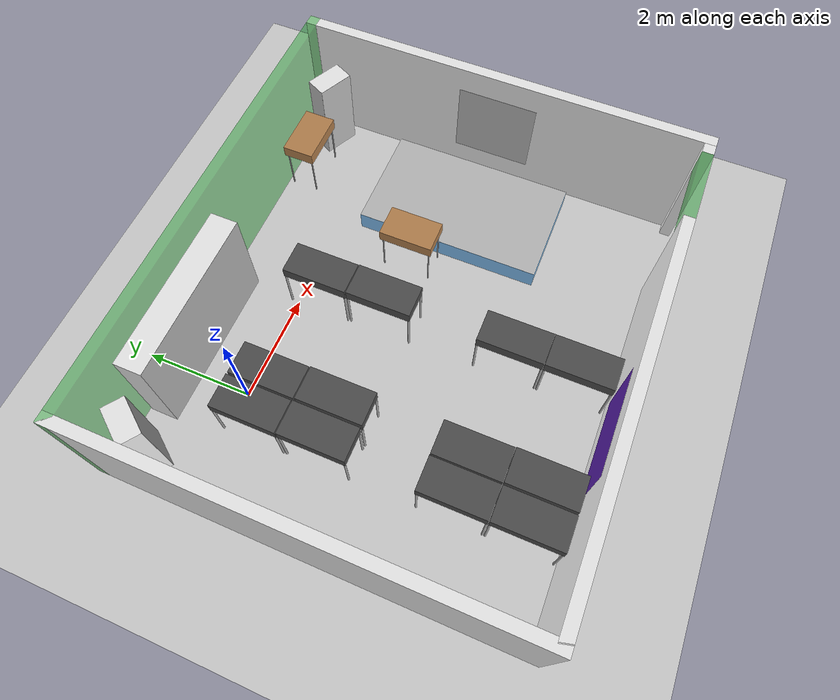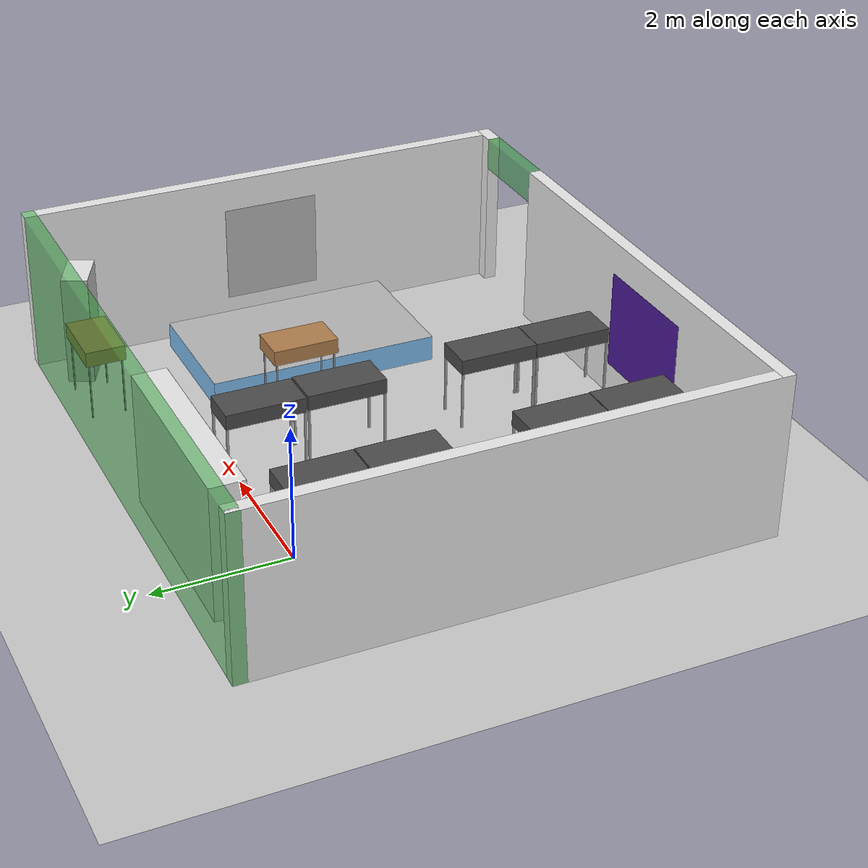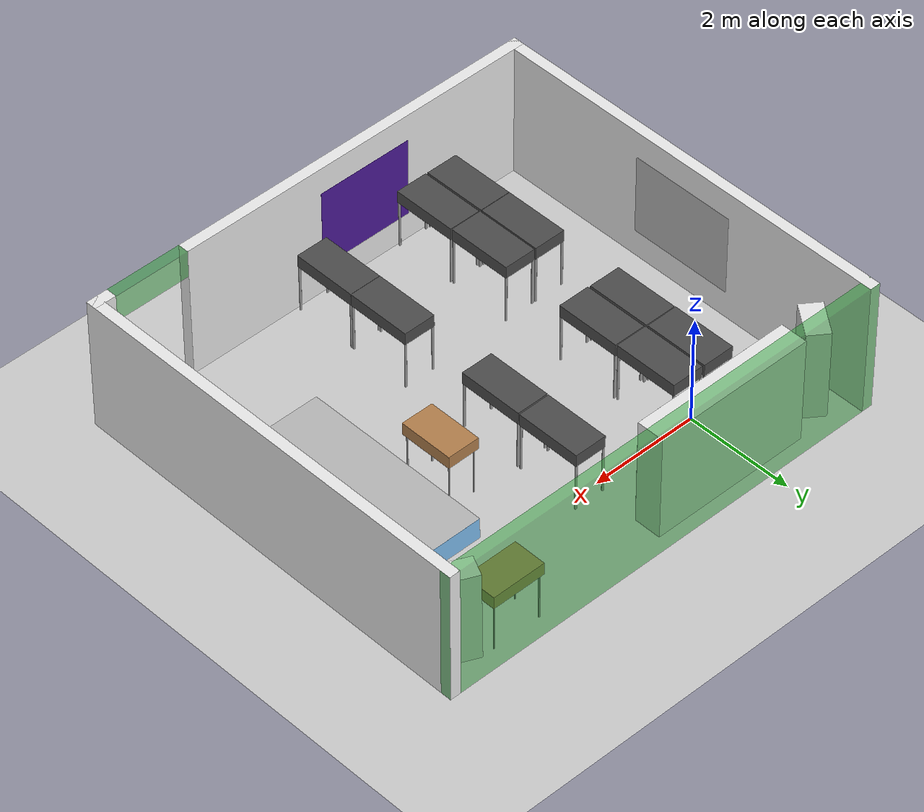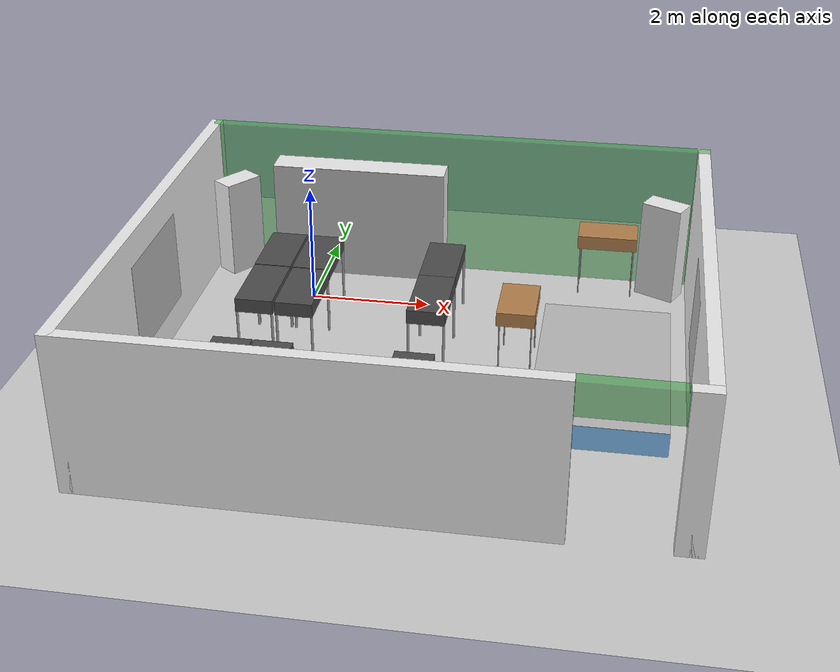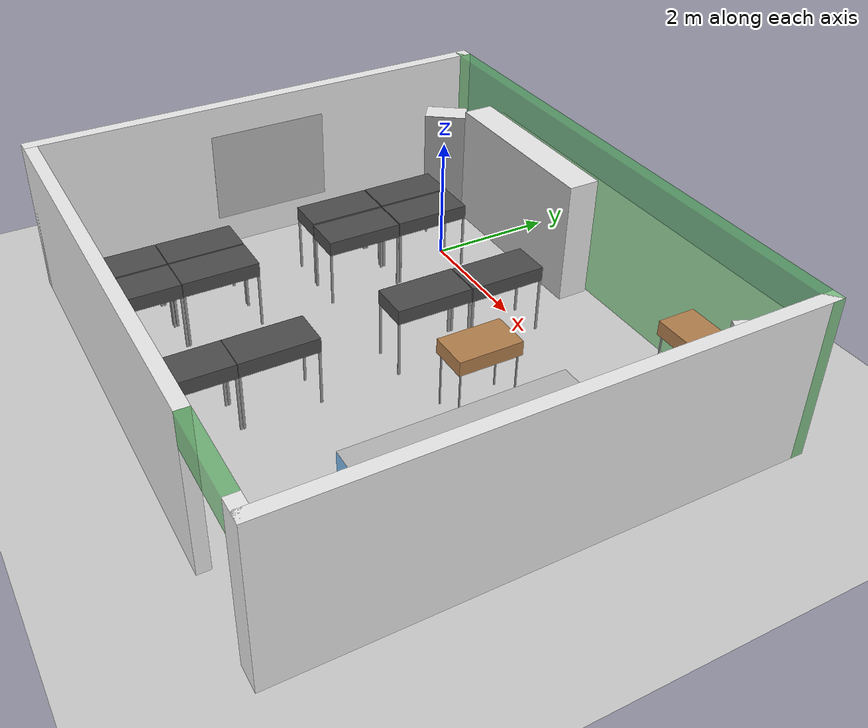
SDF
<sdf version="1.4">
 <world name="default">
  <light name="sun" type="directional">
   <pose>0 -15 10 0 -0 0</pose>
   <diffuse>0.8 0.8 0.8 1</diffuse>
   <specular>0.2 0.2 0.2 1</specular>
   <attenuation>
    <range>1000</range>
    <constant>0.9</constant>
    <linear>0.01</linear>
    <quadratic>0.001</quadratic>
   </attenuation>
   <direction>-0.5 0.1 -0.9</direction>
  </light>
  <model name="ground_plane">
   <static>1</static>
   <link name="link">
    <collision name="collision">
     <geometry><plane><normal>0 0 1</normal><size>100 100</size></plane></geometry>
     <surface><friction><ode><mu>100</mu><mu2>50</mu2></ode></friction></surface>
    </collision>
    <visual name="visual">
     <cast_shadows>0</cast_shadows>
     <geometry><plane><normal>0 0 1</normal><size>100 100</size></plane></geometry>
     <material>
      <script><uri>file://media/materials/scripts/gazebo.material</uri><name>Gazebo/Grey</name></script>
     </material>
    </visual>
    <velocity_decay><linear>0</linear><angular>0</angular></velocity_decay>
   </link>
  </model>
  <physics type="ode">
   <max_step_size>0.001</max_step_size>
   <real_time_factor>1</real_time_factor>
   <real_time_update_rate>1000</real_time_update_rate>
   <gravity>0 0 -9.8</gravity>
  </physics>
  <scene><ambient>0.4 0.4 0.4 1</ambient><background>0.7 0.7 0.7 1</background><shadows>1</shadows></scene>
  <spherical_coordinates>
   <surface_model>EARTH_WGS84</surface_model>
   <latitude_deg>0</latitude_deg>
   <longitude_deg>0</longitude_deg>
   <elevation>0</elevation>
   <heading_deg>0</heading_deg>
  </spherical_coordinates>
  <model name="room307">
   <link name="Wall_0">
    <pose>-4.265 0 0 0 -0 0</pose>
    <visual name="Wall_0_Visual_logo">
     <pose>-1.0 0.101 1.25 0 0 0</pose>
     <geometry><box><size>1.8 0.001 1.5</size></box></geometry>
     <material>
      <script><uri>file://media/materials/scripts/gazebo.material</uri><name>Gazebo/RosIndigoWall</name></script>
     </material>
    </visual>
    <visual name="Wall_0_Visual_0">
     <pose>-0.9 0 1.25 0 -0 0</pose>
     <geometry><box><size>6.93 0.2 2.5</size></box></geometry>
     <material>
      <script><uri>file://media/materials/scripts/gazebo.material</uri><name>Gazebo/White</name></script>
     </material>
    </visual>
    <collision name="Wall_0_Collision_0">
     <geometry><box><size>6.93 0.2 2.5</size></box></geometry>
     <pose>-0.9 0 1.25 0 -0 0</pose>
    </collision>
    <visual name="Wall_0_Visual_1">
     <pose>4.165 0 1.25 0 -0 0</pose>
     <geometry><box><size>0.4 0.2 2.5</size></box></geometry>
     <material>
      <script><uri>file://media/materials/scripts/gazebo.material</uri><name>Gazebo/White</name></script>
     </material>
    </visual>
    <collision name="Wall_0_Collision_1">
     <geometry><box><size>0.4 0.2 2.5</size></box></geometry>
     <pose>4.165 0 1.25 0 -0 0</pose>
    </collision>
    <visual name="Wall_0_Visual_2">
     <pose>3.265 0 2.25 0 -0 0</pose>
     <geometry><box><size>1.4 0.2 0.5</size></box></geometry>
     <material>
      <script><uri>file://media/materials/scripts/gazebo.material</uri><name>Gazebo/GreenTransparent</name></script>
     </material>
    </visual>
    <collision name="Wall_0_Collision_2">
     <geometry><box><size>1.4 0.2 0.5</size></box></geometry>
     <pose>3.265 0 2.25 0 -0 0</pose>
    </collision>
    <velocity_decay><linear>0</linear><angular>0</angular></velocity_decay>
   </link>
   <link name="Wall_1">
    <visual name="Wall_1_Visual_logo">
     <pose>0 0.101 1.25 0 0 0</pose>
     <geometry><box><size>1.5 0.001 1.5</size></box></geometry>
     <material>
      <script><uri>file://media/materials/scripts/gazebo.material</uri><name>Gazebo/FZU_Logo_Wall</name></script>
     </material>
    </visual>
    <collision name="Wall_1_Collision">
     <geometry><box><size>7.77 0.2 2.5</size></box></geometry>
     <pose>0 0 1.25 0 -0 0</pose>
    </collision>
    <visual name="Wall_1_Visual">
     <pose>0 0 1.25 0 -0 0</pose>
     <geometry><box><size>7.77 0.2 2.5</size></box></geometry>
     <material>
      <script><uri>file://media/materials/scripts/gazebo.material</uri><name>Gazebo/White</name></script>
     </material>
    </visual>
    <velocity_decay><linear>0</linear><angular>0</angular></velocity_decay>
    <pose>0 3.785 0 0 -0 1.5708</pose>
   </link>
   <link name="Wall_2">
    <collision name="Wall_2_Collision">
     <geometry><box><size>8.73013 0.2 2.5</size></box></geometry>
     <pose>0 0 1.25 0 -0 0</pose>
    </collision>
    <visual name="Wall_2_Visual">
     <pose>0 0 1.25 0 -0 0</pose>
     <geometry><box><size>8.73013 0.2 2.5</size></box></geometry>
     <material>
      <script><uri>file://media/materials/scripts/gazebo.material</uri><name>Gazebo/GreenTransparent</name></script>
     </material>
    </visual>
    <velocity_decay><linear>0</linear><angular>0</angular></velocity_decay>
    <pose>-4.265 7.57 0 0 -0 3.14159</pose>
   </link>
   <link name="Wall_3">
    <visual name="Wall_3_Visual_logo">
     <pose>0 0.101 1.25 0 0 0</pose>
     <geometry><box><size>1.966254 0.001 1.5</size></box></geometry>
     <material>
      <script><uri>file://media/materials/scripts/gazebo.material</uri><name>Gazebo/RosKineticWall</name></script>
     </material>
    </visual>
    <collision name="Wall_3_Collision">
     <geometry><box><size>7.77 0.2 2.5</size></box></geometry>
     <pose>0 0 1.25 0 -0 0</pose>
    </collision>
    <visual name="Wall_3_Visual">
     <pose>0 0 1.25 0 -0 0</pose>
     <geometry><box><size>7.77 0.2 2.5</size></box></geometry>
     <material>
      <script><uri>file://media/materials/scripts/gazebo.material</uri><name>Gazebo/White</name></script>
     </material>
    </visual>
    <velocity_decay><linear>0</linear><angular>0</angular></velocity_decay>
    <pose>-8.53 3.785 0 0 0 -1.5708</pose>
   </link>
   <static>1</static>
   <pose>6.46177 -6.00059 0 0 -0 0</pose>
  </model>
  <model name="307table_3">
   <static>1</static>
   <link name="table">
    <collision name="surface">
     <pose>0 0 1 0 -0 0</pose>
     <geometry><box><size>1.2 0.6 0.23</size></box></geometry>
     <surface><friction><ode><mu>0.6</mu><mu2>0.6</mu2></ode></friction></surface>
    </collision>
    <visual name="surface">
     <pose>0 0 1 0 -0 0</pose>
     <geometry><box><size>1.2 0.6 0.23</size></box></geometry>
     <material>
      <script><uri>file://media/materials/scripts/gazebo.material</uri><name>Gazebo/DarkGrey</name></script>
     </material>
    </visual>
    <collision name="front_left_leg">
     <pose>0.58 0.28 0.5 0 -0 0</pose>
     <geometry><cylinder><radius>0.02</radius><length>1</length></cylinder></geometry>
    </collision>
    <visual name="front_left_leg">
     <pose>0.58 0.28 0.5 0 -0 0</pose>
     <geometry><cylinder><radius>0.02</radius><length>1</length></cylinder></geometry>
     <material>
      <script><uri>file://media/materials/scripts/gazebo.material</uri><name>Gazebo/Grey</name></script>
     </material>
    </visual>
    <collision name="front_right_leg">
     <pose>0.58 -0.28 0.5 0 -0 0</pose>
     <geometry><cylinder><radius>0.02</radius><length>1</length></cylinder></geometry>
    </collision>
    <visual name="front_right_leg">
     <pose>0.58 -0.28 0.5 0 -0 0</pose>
     <geometry><cylinder><radius>0.02</radius><length>1</length></cylinder></geometry>
     <material>
      <script><uri>file://media/materials/scripts/gazebo.material</uri><name>Gazebo/Grey</name></script>
     </material>
    </visual>
    <collision name="back_right_leg">
     <pose>-0.58 -0.28 0.5 0 -0 0</pose>
     <geometry><cylinder><radius>0.02</radius><length>1</length></cylinder></geometry>
    </collision>
    <visual name="back_right_leg">
     <pose>-0.58 -0.28 0.5 0 -0 0</pose>
     <geometry><cylinder><radius>0.02</radius><length>1</length></cylinder></geometry>
     <material>
      <script><uri>file://media/materials/scripts/gazebo.material</uri><name>Gazebo/Grey</name></script>
     </material>
    </visual>
    <collision name="back_left_leg">
     <pose>-0.58 0.28 0.5 0 -0 0</pose>
     <geometry><cylinder><radius>0.02</radius><length>1</length></cylinder></geometry>
    </collision>
    <visual name="back_left_leg">
     <pose>-0.58 0.28 0.5 0 -0 0</pose>
     <geometry><cylinder><radius>0.02</radius><length>1</length></cylinder></geometry>
     <material>
      <script><uri>file://media/materials/scripts/gazebo.material</uri><name>Gazebo/Grey</name></script>
     </material>
    </visual>
    <velocity_decay><linear>0</linear><angular>0</angular></velocity_decay>
   </link>
   <pose>-0.390161 -5.27658 0 0 0 -1.5708</pose>
  </model>
  <model name="307table_4">
   <static>1</static>
   <link name="table">
    <collision name="surface">
     <pose>0 0 1 0 -0 0</pose>
     <geometry><box><size>1.2 0.6 0.23</size></box></geometry>
     <surface><friction><ode><mu>0.6</mu><mu2>0.6</mu2></ode></friction></surface>
    </collision>
    <visual name="surface">
     <pose>0 0 1 0 -0 0</pose>
     <geometry><box><size>1.2 0.6 0.23</size></box></geometry>
     <material>
      <script><uri>file://media/materials/scripts/gazebo.material</uri><name>Gazebo/DarkGrey</name></script>
     </material>
    </visual>
    <collision name="front_left_leg">
     <pose>0.58 0.28 0.5 0 -0 0</pose>
     <geometry><cylinder><radius>0.02</radius><length>1</length></cylinder></geometry>
    </collision>
    <visual name="front_left_leg">
     <pose>0.58 0.28 0.5 0 -0 0</pose>
     <geometry><cylinder><radius>0.02</radius><length>1</length></cylinder></geometry>
     <material>
      <script><uri>file://media/materials/scripts/gazebo.material</uri><name>Gazebo/Grey</name></script>
     </material>
    </visual>
    <collision name="front_right_leg">
     <pose>0.58 -0.28 0.5 0 -0 0</pose>
     <geometry><cylinder><radius>0.02</radius><length>1</length></cylinder></geometry>
    </collision>
    <visual name="front_right_leg">
     <pose>0.58 -0.28 0.5 0 -0 0</pose>
     <geometry><cylinder><radius>0.02</radius><length>1</length></cylinder></geometry>
     <material>
      <script><uri>file://media/materials/scripts/gazebo.material</uri><name>Gazebo/Grey</name></script>
     </material>
    </visual>
    <collision name="back_right_leg">
     <pose>-0.58 -0.28 0.5 0 -0 0</pose>
     <geometry><cylinder><radius>0.02</radius><length>1</length></cylinder></geometry>
    </collision>
    <visual name="back_right_leg">
     <pose>-0.58 -0.28 0.5 0 -0 0</pose>
     <geometry><cylinder><radius>0.02</radius><length>1</length></cylinder></geometry>
     <material>
      <script><uri>file://media/materials/scripts/gazebo.material</uri><name>Gazebo/Grey</name></script>
     </material>
    </visual>
    <collision name="back_left_leg">
     <pose>-0.58 0.28 0.5 0 -0 0</pose>
     <geometry><cylinder><radius>0.02</radius><length>1</length></cylinder></geometry>
    </collision>
    <visual name="back_left_leg">
     <pose>-0.58 0.28 0.5 0 -0 0</pose>
     <geometry><cylinder><radius>0.02</radius><length>1</length></cylinder></geometry>
     <material>
      <script><uri>file://media/materials/scripts/gazebo.material</uri><name>Gazebo/Grey</name></script>
     </material>
    </visual>
    <velocity_decay><linear>0</linear><angular>0</angular></velocity_decay>
   </link>
   <pose>0.247205 -5.27928 0.003425 0 0 -1.5708</pose>
  </model>
  <model name="307table_5">
   <static>1</static>
   <link name="table">
    <collision name="surface">
     <pose>0 0 1 0 -0 0</pose>
     <geometry><box><size>1.2 0.6 0.23</size></box></geometry>
     <surface><friction><ode><mu>0.6</mu><mu2>0.6</mu2></ode></friction></surface>
    </collision>
    <visual name="surface">
     <pose>0 0 1 0 -0 0</pose>
     <geometry><box><size>1.2 0.6 0.23</size></box></geometry>
     <material>
      <script><uri>file://media/materials/scripts/gazebo.material</uri><name>Gazebo/DarkGrey</name></script>
     </material>
    </visual>
    <collision name="front_left_leg">
     <pose>0.58 0.28 0.5 0 -0 0</pose>
     <geometry><cylinder><radius>0.02</radius><length>1</length></cylinder></geometry>
    </collision>
    <visual name="front_left_leg">
     <pose>0.58 0.28 0.5 0 -0 0</pose>
     <geometry><cylinder><radius>0.02</radius><length>1</length></cylinder></geometry>
     <material>
      <script><uri>file://media/materials/scripts/gazebo.material</uri><name>Gazebo/Grey</name></script>
     </material>
    </visual>
    <collision name="front_right_leg">
     <pose>0.58 -0.28 0.5 0 -0 0</pose>
     <geometry><cylinder><radius>0.02</radius><length>1</length></cylinder></geometry>
    </collision>
    <visual name="front_right_leg">
     <pose>0.58 -0.28 0.5 0 -0 0</pose>
     <geometry><cylinder><radius>0.02</radius><length>1</length></cylinder></geometry>
     <material>
      <script><uri>file://media/materials/scripts/gazebo.material</uri><name>Gazebo/Grey</name></script>
     </material>
    </visual>
    <collision name="back_right_leg">
     <pose>-0.58 -0.28 0.5 0 -0 0</pose>
     <geometry><cylinder><radius>0.02</radius><length>1</length></cylinder></geometry>
    </collision>
    <visual name="back_right_leg">
     <pose>-0.58 -0.28 0.5 0 -0 0</pose>
     <geometry><cylinder><radius>0.02</radius><length>1</length></cylinder></geometry>
     <material>
      <script><uri>file://media/materials/scripts/gazebo.material</uri><name>Gazebo/Grey</name></script>
     </material>
    </visual>
    <collision name="back_left_leg">
     <pose>-0.58 0.28 0.5 0 -0 0</pose>
     <geometry><cylinder><radius>0.02</radius><length>1</length></cylinder></geometry>
    </collision>
    <visual name="back_left_leg">
     <pose>-0.58 0.28 0.5 0 -0 0</pose>
     <geometry><cylinder><radius>0.02</radius><length>1</length></cylinder></geometry>
     <material>
      <script><uri>file://media/materials/scripts/gazebo.material</uri><name>Gazebo/Grey</name></script>
     </material>
    </visual>
    <velocity_decay><linear>0</linear><angular>0</angular></velocity_decay>
   </link>
   <pose>0.235497 -4.06911 0 0 0 -1.5708</pose>
  </model>
  <model name="307table_6">
   <static>1</static>
   <link name="table">
    <collision name="surface">
     <pose>0 0 1 0 -0 0</pose>
     <geometry><box><size>1.2 0.6 0.23</size></box></geometry>
     <surface><friction><ode><mu>0.6</mu><mu2>0.6</mu2></ode></friction></surface>
    </collision>
    <visual name="surface">
     <pose>0 0 1 0 -0 0</pose>
     <geometry><box><size>1.2 0.6 0.23</size></box></geometry>
     <material>
      <script><uri>file://media/materials/scripts/gazebo.material</uri><name>Gazebo/DarkGrey</name></script>
     </material>
    </visual>
    <collision name="front_left_leg">
     <pose>0.58 0.28 0.5 0 -0 0</pose>
     <geometry><cylinder><radius>0.02</radius><length>1</length></cylinder></geometry>
    </collision>
    <visual name="front_left_leg">
     <pose>0.58 0.28 0.5 0 -0 0</pose>
     <geometry><cylinder><radius>0.02</radius><length>1</length></cylinder></geometry>
     <material>
      <script><uri>file://media/materials/scripts/gazebo.material</uri><name>Gazebo/Grey</name></script>
     </material>
    </visual>
    <collision name="front_right_leg">
     <pose>0.58 -0.28 0.5 0 -0 0</pose>
     <geometry><cylinder><radius>0.02</radius><length>1</length></cylinder></geometry>
    </collision>
    <visual name="front_right_leg">
     <pose>0.58 -0.28 0.5 0 -0 0</pose>
     <geometry><cylinder><radius>0.02</radius><length>1</length></cylinder></geometry>
     <material>
      <script><uri>file://media/materials/scripts/gazebo.material</uri><name>Gazebo/Grey</name></script>
     </material>
    </visual>
    <collision name="back_right_leg">
     <pose>-0.58 -0.28 0.5 0 -0 0</pose>
     <geometry><cylinder><radius>0.02</radius><length>1</length></cylinder></geometry>
    </collision>
    <visual name="back_right_leg">
     <pose>-0.58 -0.28 0.5 0 -0 0</pose>
     <geometry><cylinder><radius>0.02</radius><length>1</length></cylinder></geometry>
     <material>
      <script><uri>file://media/materials/scripts/gazebo.material</uri><name>Gazebo/Grey</name></script>
     </material>
    </visual>
    <collision name="back_left_leg">
     <pose>-0.58 0.28 0.5 0 -0 0</pose>
     <geometry><cylinder><radius>0.02</radius><length>1</length></cylinder></geometry>
    </collision>
    <visual name="back_left_leg">
     <pose>-0.58 0.28 0.5 0 -0 0</pose>
     <geometry><cylinder><radius>0.02</radius><length>1</length></cylinder></geometry>
     <material>
      <script><uri>file://media/materials/scripts/gazebo.material</uri><name>Gazebo/Grey</name></script>
     </material>
    </visual>
    <velocity_decay><linear>0</linear><angular>0</angular></velocity_decay>
   </link>
   <pose>-0.391298 -4.06642 -0 0 0 -1.5708</pose>
  </model>
  <model name="307table_7">
   <static>1</static>
   <link name="table">
    <collision name="surface">
     <pose>0 0 1 0 -0 0</pose>
     <geometry><box><size>1.2 0.6 0.23</size></box></geometry>
     <surface><friction><ode><mu>0.6</mu><mu2>0.6</mu2></ode></friction></surface>
    </collision>
    <visual name="surface">
     <pose>0 0 1 0 -0 0</pose>
     <geometry><box><size>1.2 0.6 0.23</size></box></geometry>
     <material>
      <script><uri>file://media/materials/scripts/gazebo.material</uri><name>Gazebo/DarkGrey</name></script>
     </material>
    </visual>
    <collision name="front_left_leg">
     <pose>0.58 0.28 0.5 0 -0 0</pose>
     <geometry><cylinder><radius>0.02</radius><length>1</length></cylinder></geometry>
    </collision>
    <visual name="front_left_leg">
     <pose>0.58 0.28 0.5 0 -0 0</pose>
     <geometry><cylinder><radius>0.02</radius><length>1</length></cylinder></geometry>
     <material>
      <script><uri>file://media/materials/scripts/gazebo.material</uri><name>Gazebo/Grey</name></script>
     </material>
    </visual>
    <collision name="front_right_leg">
     <pose>0.58 -0.28 0.5 0 -0 0</pose>
     <geometry><cylinder><radius>0.02</radius><length>1</length></cylinder></geometry>
    </collision>
    <visual name="front_right_leg">
     <pose>0.58 -0.28 0.5 0 -0 0</pose>
     <geometry><cylinder><radius>0.02</radius><length>1</length></cylinder></geometry>
     <material>
      <script><uri>file://media/materials/scripts/gazebo.material</uri><name>Gazebo/Grey</name></script>
     </material>
    </visual>
    <collision name="back_right_leg">
     <pose>-0.58 -0.28 0.5 0 -0 0</pose>
     <geometry><cylinder><radius>0.02</radius><length>1</length></cylinder></geometry>
    </collision>
    <visual name="back_right_leg">
     <pose>-0.58 -0.28 0.5 0 -0 0</pose>
     <geometry><cylinder><radius>0.02</radius><length>1</length></cylinder></geometry>
     <material>
      <script><uri>file://media/materials/scripts/gazebo.material</uri><name>Gazebo/Grey</name></script>
     </material>
    </visual>
    <collision name="back_left_leg">
     <pose>-0.58 0.28 0.5 0 -0 0</pose>
     <geometry><cylinder><radius>0.02</radius><length>1</length></cylinder></geometry>
    </collision>
    <visual name="back_left_leg">
     <pose>-0.58 0.28 0.5 0 -0 0</pose>
     <geometry><cylinder><radius>0.02</radius><length>1</length></cylinder></geometry>
     <material>
      <script><uri>file://media/materials/scripts/gazebo.material</uri><name>Gazebo/Grey</name></script>
     </material>
    </visual>
    <velocity_decay><linear>0</linear><angular>0</angular></velocity_decay>
   </link>
   <pose>2.34819 -5.2601 0 0 0 -1.5708</pose>
  </model>
  <model name="307table_8">
   <static>1</static>
   <link name="table">
    <collision name="surface">
     <pose>0 0 1 0 -0 0</pose>
     <geometry><box><size>1.2 0.6 0.23</size></box></geometry>
     <surface><friction><ode><mu>0.6</mu><mu2>0.6</mu2></ode></friction></surface>
    </collision>
    <visual name="surface">
     <pose>0 0 1 0 -0 0</pose>
     <geometry><box><size>1.2 0.6 0.23</size></box></geometry>
     <material>
      <script><uri>file://media/materials/scripts/gazebo.material</uri><name>Gazebo/DarkGrey</name></script>
     </material>
    </visual>
    <collision name="front_left_leg">
     <pose>0.58 0.28 0.5 0 -0 0</pose>
     <geometry><cylinder><radius>0.02</radius><length>1</length></cylinder></geometry>
    </collision>
    <visual name="front_left_leg">
     <pose>0.58 0.28 0.5 0 -0 0</pose>
     <geometry><cylinder><radius>0.02</radius><length>1</length></cylinder></geometry>
     <material>
      <script><uri>file://media/materials/scripts/gazebo.material</uri><name>Gazebo/Grey</name></script>
     </material>
    </visual>
    <collision name="front_right_leg">
     <pose>0.58 -0.28 0.5 0 -0 0</pose>
     <geometry><cylinder><radius>0.02</radius><length>1</length></cylinder></geometry>
    </collision>
    <visual name="front_right_leg">
     <pose>0.58 -0.28 0.5 0 -0 0</pose>
     <geometry><cylinder><radius>0.02</radius><length>1</length></cylinder></geometry>
     <material>
      <script><uri>file://media/materials/scripts/gazebo.material</uri><name>Gazebo/Grey</name></script>
     </material>
    </visual>
    <collision name="back_right_leg">
     <pose>-0.58 -0.28 0.5 0 -0 0</pose>
     <geometry><cylinder><radius>0.02</radius><length>1</length></cylinder></geometry>
    </collision>
    <visual name="back_right_leg">
     <pose>-0.58 -0.28 0.5 0 -0 0</pose>
     <geometry><cylinder><radius>0.02</radius><length>1</length></cylinder></geometry>
     <material>
      <script><uri>file://media/materials/scripts/gazebo.material</uri><name>Gazebo/Grey</name></script>
     </material>
    </visual>
    <collision name="back_left_leg">
     <pose>-0.58 0.28 0.5 0 -0 0</pose>
     <geometry><cylinder><radius>0.02</radius><length>1</length></cylinder></geometry>
    </collision>
    <visual name="back_left_leg">
     <pose>-0.58 0.28 0.5 0 -0 0</pose>
     <geometry><cylinder><radius>0.02</radius><length>1</length></cylinder></geometry>
     <material>
      <script><uri>file://media/materials/scripts/gazebo.material</uri><name>Gazebo/Grey</name></script>
     </material>
    </visual>
    <velocity_decay><linear>0</linear><angular>0</angular></velocity_decay>
   </link>
   <pose>2.34754 -4.05307 0 0 0 -1.5708</pose>
  </model>
  <model name="307table_9">
   <static>1</static>
   <link name="table">
    <collision name="surface">
     <pose>0 0 1 0 -0 0</pose>
     <geometry><box><size>1.2 0.6 0.23</size></box></geometry>
     <surface><friction><ode><mu>0.6</mu><mu2>0.6</mu2></ode></friction></surface>
    </collision>
    <visual name="surface">
     <pose>0 0 1 0 -0 0</pose>
     <geometry><box><size>1.2 0.6 0.23</size></box></geometry>
     <material>
      <script><uri>file://media/materials/scripts/gazebo.material</uri><name>Gazebo/DarkGrey</name></script>
     </material>
    </visual>
    <collision name="front_left_leg">
     <pose>0.58 0.28 0.5 0 -0 0</pose>
     <geometry><cylinder><radius>0.02</radius><length>1</length></cylinder></geometry>
    </collision>
    <visual name="front_left_leg">
     <pose>0.58 0.28 0.5 0 -0 0</pose>
     <geometry><cylinder><radius>0.02</radius><length>1</length></cylinder></geometry>
     <material>
      <script><uri>file://media/materials/scripts/gazebo.material</uri><name>Gazebo/Grey</name></script>
     </material>
    </visual>
    <collision name="front_right_leg">
     <pose>0.58 -0.28 0.5 0 -0 0</pose>
     <geometry><cylinder><radius>0.02</radius><length>1</length></cylinder></geometry>
    </collision>
    <visual name="front_right_leg">
     <pose>0.58 -0.28 0.5 0 -0 0</pose>
     <geometry><cylinder><radius>0.02</radius><length>1</length></cylinder></geometry>
     <material>
      <script><uri>file://media/materials/scripts/gazebo.material</uri><name>Gazebo/Grey</name></script>
     </material>
    </visual>
    <collision name="back_right_leg">
     <pose>-0.58 -0.28 0.5 0 -0 0</pose>
     <geometry><cylinder><radius>0.02</radius><length>1</length></cylinder></geometry>
    </collision>
    <visual name="back_right_leg">
     <pose>-0.58 -0.28 0.5 0 -0 0</pose>
     <geometry><cylinder><radius>0.02</radius><length>1</length></cylinder></geometry>
     <material>
      <script><uri>file://media/materials/scripts/gazebo.material</uri><name>Gazebo/Grey</name></script>
     </material>
    </visual>
    <collision name="back_left_leg">
     <pose>-0.58 0.28 0.5 0 -0 0</pose>
     <geometry><cylinder><radius>0.02</radius><length>1</length></cylinder></geometry>
    </collision>
    <visual name="back_left_leg">
     <pose>-0.58 0.28 0.5 0 -0 0</pose>
     <geometry><cylinder><radius>0.02</radius><length>1</length></cylinder></geometry>
     <material>
      <script><uri>file://media/materials/scripts/gazebo.material</uri><name>Gazebo/Grey</name></script>
     </material>
    </visual>
    <velocity_decay><linear>0</linear><angular>0</angular></velocity_decay>
   </link>
   <pose>-0.40427 -1.69505 0 0 0 -1.5708</pose>
  </model>
  <model name="307table_10">
   <static>1</static>
   <link name="table">
    <collision name="surface">
     <pose>0 0 1 0 -0 0</pose>
     <geometry><box><size>1.2 0.6 0.23</size></box></geometry>
     <surface><friction><ode><mu>0.6</mu><mu2>0.6</mu2></ode></friction></surface>
    </collision>
    <visual name="surface">
     <pose>0 0 1 0 -0 0</pose>
     <geometry><box><size>1.2 0.6 0.23</size></box></geometry>
     <material>
      <script><uri>file://media/materials/scripts/gazebo.material</uri><name>Gazebo/DarkGrey</name></script>
     </material>
    </visual>
    <collision name="front_left_leg">
     <pose>0.58 0.28 0.5 0 -0 0</pose>
     <geometry><cylinder><radius>0.02</radius><length>1</length></cylinder></geometry>
    </collision>
    <visual name="front_left_leg">
     <pose>0.58 0.28 0.5 0 -0 0</pose>
     <geometry><cylinder><radius>0.02</radius><length>1</length></cylinder></geometry>
     <material>
      <script><uri>file://media/materials/scripts/gazebo.material</uri><name>Gazebo/Grey</name></script>
     </material>
    </visual>
    <collision name="front_right_leg">
     <pose>0.58 -0.28 0.5 0 -0 0</pose>
     <geometry><cylinder><radius>0.02</radius><length>1</length></cylinder></geometry>
    </collision>
    <visual name="front_right_leg">
     <pose>0.58 -0.28 0.5 0 -0 0</pose>
     <geometry><cylinder><radius>0.02</radius><length>1</length></cylinder></geometry>
     <material>
      <script><uri>file://media/materials/scripts/gazebo.material</uri><name>Gazebo/Grey</name></script>
     </material>
    </visual>
    <collision name="back_right_leg">
     <pose>-0.58 -0.28 0.5 0 -0 0</pose>
     <geometry><cylinder><radius>0.02</radius><length>1</length></cylinder></geometry>
    </collision>
    <visual name="back_right_leg">
     <pose>-0.58 -0.28 0.5 0 -0 0</pose>
     <geometry><cylinder><radius>0.02</radius><length>1</length></cylinder></geometry>
     <material>
      <script><uri>file://media/materials/scripts/gazebo.material</uri><name>Gazebo/Grey</name></script>
     </material>
    </visual>
    <collision name="back_left_leg">
     <pose>-0.58 0.28 0.5 0 -0 0</pose>
     <geometry><cylinder><radius>0.02</radius><length>1</length></cylinder></geometry>
    </collision>
    <visual name="back_left_leg">
     <pose>-0.58 0.28 0.5 0 -0 0</pose>
     <geometry><cylinder><radius>0.02</radius><length>1</length></cylinder></geometry>
     <material>
      <script><uri>file://media/materials/scripts/gazebo.material</uri><name>Gazebo/Grey</name></script>
     </material>
    </visual>
    <velocity_decay><linear>0</linear><angular>0</angular></velocity_decay>
   </link>
   <pose>0.236182 -1.70483 0 0 -0 1.5708</pose>
  </model>
  <model name="307table_11">
   <static>1</static>
   <link name="table">
    <collision name="surface">
     <pose>0 0 1 0 -0 0</pose>
     <geometry><box><size>1.2 0.6 0.23</size></box></geometry>
     <surface><friction><ode><mu>0.6</mu><mu2>0.6</mu2></ode></friction></surface>
    </collision>
    <visual name="surface">
     <pose>0 0 1 0 -0 0</pose>
     <geometry><box><size>1.2 0.6 0.23</size></box></geometry>
     <material>
      <script><uri>file://media/materials/scripts/gazebo.material</uri><name>Gazebo/DarkGrey</name></script>
     </material>
    </visual>
    <collision name="front_left_leg">
     <pose>0.58 0.28 0.5 0 -0 0</pose>
     <geometry><cylinder><radius>0.02</radius><length>1</length></cylinder></geometry>
    </collision>
    <visual name="front_left_leg">
     <pose>0.58 0.28 0.5 0 -0 0</pose>
     <geometry><cylinder><radius>0.02</radius><length>1</length></cylinder></geometry>
     <material>
      <script><uri>file://media/materials/scripts/gazebo.material</uri><name>Gazebo/Grey</name></script>
     </material>
    </visual>
    <collision name="front_right_leg">
     <pose>0.58 -0.28 0.5 0 -0 0</pose>
     <geometry><cylinder><radius>0.02</radius><length>1</length></cylinder></geometry>
    </collision>
    <visual name="front_right_leg">
     <pose>0.58 -0.28 0.5 0 -0 0</pose>
     <geometry><cylinder><radius>0.02</radius><length>1</length></cylinder></geometry>
     <material>
      <script><uri>file://media/materials/scripts/gazebo.material</uri><name>Gazebo/Grey</name></script>
     </material>
    </visual>
    <collision name="back_right_leg">
     <pose>-0.58 -0.28 0.5 0 -0 0</pose>
     <geometry><cylinder><radius>0.02</radius><length>1</length></cylinder></geometry>
    </collision>
    <visual name="back_right_leg">
     <pose>-0.58 -0.28 0.5 0 -0 0</pose>
     <geometry><cylinder><radius>0.02</radius><length>1</length></cylinder></geometry>
     <material>
      <script><uri>file://media/materials/scripts/gazebo.material</uri><name>Gazebo/Grey</name></script>
     </material>
    </visual>
    <collision name="back_left_leg">
     <pose>-0.58 0.28 0.5 0 -0 0</pose>
     <geometry><cylinder><radius>0.02</radius><length>1</length></cylinder></geometry>
    </collision>
    <visual name="back_left_leg">
     <pose>-0.58 0.28 0.5 0 -0 0</pose>
     <geometry><cylinder><radius>0.02</radius><length>1</length></cylinder></geometry>
     <material>
      <script><uri>file://media/materials/scripts/gazebo.material</uri><name>Gazebo/Grey</name></script>
     </material>
    </visual>
    <velocity_decay><linear>0</linear><angular>0</angular></velocity_decay>
   </link>
   <pose>-0.410945 -0.476582 0 0 0 -1.5708</pose>
  </model>
  <model name="307table_12">
   <static>1</static>
   <link name="table">
    <collision name="surface">
     <pose>0 0 1 0 -0 0</pose>
     <geometry><box><size>1.2 0.6 0.23</size></box></geometry>
     <surface><friction><ode><mu>0.6</mu><mu2>0.6</mu2></ode></friction></surface>
    </collision>
    <visual name="surface">
     <pose>0 0 1 0 -0 0</pose>
     <geometry><box><size>1.2 0.6 0.23</size></box></geometry>
     <material>
      <script><uri>file://media/materials/scripts/gazebo.material</uri><name>Gazebo/DarkGrey</name></script>
     </material>
    </visual>
    <collision name="front_left_leg">
     <pose>0.58 0.28 0.5 0 -0 0</pose>
     <geometry><cylinder><radius>0.02</radius><length>1</length></cylinder></geometry>
    </collision>
    <visual name="front_left_leg">
     <pose>0.58 0.28 0.5 0 -0 0</pose>
     <geometry><cylinder><radius>0.02</radius><length>1</length></cylinder></geometry>
     <material>
      <script><uri>file://media/materials/scripts/gazebo.material</uri><name>Gazebo/Grey</name></script>
     </material>
    </visual>
    <collision name="front_right_leg">
     <pose>0.58 -0.28 0.5 0 -0 0</pose>
     <geometry><cylinder><radius>0.02</radius><length>1</length></cylinder></geometry>
    </collision>
    <visual name="front_right_leg">
     <pose>0.58 -0.28 0.5 0 -0 0</pose>
     <geometry><cylinder><radius>0.02</radius><length>1</length></cylinder></geometry>
     <material>
      <script><uri>file://media/materials/scripts/gazebo.material</uri><name>Gazebo/Grey</name></script>
     </material>
    </visual>
    <collision name="back_right_leg">
     <pose>-0.58 -0.28 0.5 0 -0 0</pose>
     <geometry><cylinder><radius>0.02</radius><length>1</length></cylinder></geometry>
    </collision>
    <visual name="back_right_leg">
     <pose>-0.58 -0.28 0.5 0 -0 0</pose>
     <geometry><cylinder><radius>0.02</radius><length>1</length></cylinder></geometry>
     <material>
      <script><uri>file://media/materials/scripts/gazebo.material</uri><name>Gazebo/Grey</name></script>
     </material>
    </visual>
    <collision name="back_left_leg">
     <pose>-0.58 0.28 0.5 0 -0 0</pose>
     <geometry><cylinder><radius>0.02</radius><length>1</length></cylinder></geometry>
    </collision>
    <visual name="back_left_leg">
     <pose>-0.58 0.28 0.5 0 -0 0</pose>
     <geometry><cylinder><radius>0.02</radius><length>1</length></cylinder></geometry>
     <material>
      <script><uri>file://media/materials/scripts/gazebo.material</uri><name>Gazebo/Grey</name></script>
     </material>
    </visual>
    <velocity_decay><linear>0</linear><angular>0</angular></velocity_decay>
   </link>
   <pose>0.223485 -0.486695 0 0 0 -1.5708</pose>
  </model>
  <model name="307table_13">
   <static>1</static>
   <link name="table">
    <collision name="surface">
     <pose>0 0 1 0 -0 0</pose>
     <geometry><box><size>1.2 0.6 0.23</size></box></geometry>
     <surface><friction><ode><mu>0.6</mu><mu2>0.6</mu2></ode></friction></surface>
    </collision>
    <visual name="surface">
     <pose>0 0 1 0 -0 0</pose>
     <geometry><box><size>1.2 0.6 0.23</size></box></geometry>
     <material>
      <script><uri>file://media/materials/scripts/gazebo.material</uri><name>Gazebo/DarkGrey</name></script>
     </material>
    </visual>
    <collision name="front_left_leg">
     <pose>0.58 0.28 0.5 0 -0 0</pose>
     <geometry><cylinder><radius>0.02</radius><length>1</length></cylinder></geometry>
    </collision>
    <visual name="front_left_leg">
     <pose>0.58 0.28 0.5 0 -0 0</pose>
     <geometry><cylinder><radius>0.02</radius><length>1</length></cylinder></geometry>
     <material>
      <script><uri>file://media/materials/scripts/gazebo.material</uri><name>Gazebo/Grey</name></script>
     </material>
    </visual>
    <collision name="front_right_leg">
     <pose>0.58 -0.28 0.5 0 -0 0</pose>
     <geometry><cylinder><radius>0.02</radius><length>1</length></cylinder></geometry>
    </collision>
    <visual name="front_right_leg">
     <pose>0.58 -0.28 0.5 0 -0 0</pose>
     <geometry><cylinder><radius>0.02</radius><length>1</length></cylinder></geometry>
     <material>
      <script><uri>file://media/materials/scripts/gazebo.material</uri><name>Gazebo/Grey</name></script>
     </material>
    </visual>
    <collision name="back_right_leg">
     <pose>-0.58 -0.28 0.5 0 -0 0</pose>
     <geometry><cylinder><radius>0.02</radius><length>1</length></cylinder></geometry>
    </collision>
    <visual name="back_right_leg">
     <pose>-0.58 -0.28 0.5 0 -0 0</pose>
     <geometry><cylinder><radius>0.02</radius><length>1</length></cylinder></geometry>
     <material>
      <script><uri>file://media/materials/scripts/gazebo.material</uri><name>Gazebo/Grey</name></script>
     </material>
    </visual>
    <collision name="back_left_leg">
     <pose>-0.58 0.28 0.5 0 -0 0</pose>
     <geometry><cylinder><radius>0.02</radius><length>1</length></cylinder></geometry>
    </collision>
    <visual name="back_left_leg">
     <pose>-0.58 0.28 0.5 0 -0 0</pose>
     <geometry><cylinder><radius>0.02</radius><length>1</length></cylinder></geometry>
     <material>
      <script><uri>file://media/materials/scripts/gazebo.material</uri><name>Gazebo/Grey</name></script>
     </material>
    </visual>
    <velocity_decay><linear>0</linear><angular>0</angular></velocity_decay>
   </link>
   <pose>2.31309 -1.64915 0.011183 0 0 -1.5708</pose>
  </model>
  <model name="307table_14">
   <static>1</static>
   <link name="table">
    <collision name="surface">
     <pose>0 0 1 0 -0 0</pose>
     <geometry><box><size>1.2 0.6 0.23</size></box></geometry>
     <surface><friction><ode><mu>0.6</mu><mu2>0.6</mu2></ode></friction></surface>
    </collision>
    <visual name="surface">
     <pose>0 0 1 0 -0 0</pose>
     <geometry><box><size>1.2 0.6 0.23</size></box></geometry>
     <material>
      <script><uri>file://media/materials/scripts/gazebo.material</uri><name>Gazebo/DarkGrey</name></script>
     </material>
    </visual>
    <collision name="front_left_leg">
     <pose>0.58 0.28 0.5 0 -0 0</pose>
     <geometry><cylinder><radius>0.02</radius><length>1</length></cylinder></geometry>
    </collision>
    <visual name="front_left_leg">
     <pose>0.58 0.28 0.5 0 -0 0</pose>
     <geometry><cylinder><radius>0.02</radius><length>1</length></cylinder></geometry>
     <material>
      <script><uri>file://media/materials/scripts/gazebo.material</uri><name>Gazebo/Grey</name></script>
     </material>
    </visual>
    <collision name="front_right_leg">
     <pose>0.58 -0.28 0.5 0 -0 0</pose>
     <geometry><cylinder><radius>0.02</radius><length>1</length></cylinder></geometry>
    </collision>
    <visual name="front_right_leg">
     <pose>0.58 -0.28 0.5 0 -0 0</pose>
     <geometry><cylinder><radius>0.02</radius><length>1</length></cylinder></geometry>
     <material>
      <script><uri>file://media/materials/scripts/gazebo.material</uri><name>Gazebo/Grey</name></script>
     </material>
    </visual>
    <collision name="back_right_leg">
     <pose>-0.58 -0.28 0.5 0 -0 0</pose>
     <geometry><cylinder><radius>0.02</radius><length>1</length></cylinder></geometry>
    </collision>
    <visual name="back_right_leg">
     <pose>-0.58 -0.28 0.5 0 -0 0</pose>
     <geometry><cylinder><radius>0.02</radius><length>1</length></cylinder></geometry>
     <material>
      <script><uri>file://media/materials/scripts/gazebo.material</uri><name>Gazebo/Grey</name></script>
     </material>
    </visual>
    <collision name="back_left_leg">
     <pose>-0.58 0.28 0.5 0 -0 0</pose>
     <geometry><cylinder><radius>0.02</radius><length>1</length></cylinder></geometry>
    </collision>
    <visual name="back_left_leg">
     <pose>-0.58 0.28 0.5 0 -0 0</pose>
     <geometry><cylinder><radius>0.02</radius><length>1</length></cylinder></geometry>
     <material>
      <script><uri>file://media/materials/scripts/gazebo.material</uri><name>Gazebo/Grey</name></script>
     </material>
    </visual>
    <velocity_decay><linear>0</linear><angular>0</angular></velocity_decay>
   </link>
   <pose>2.30928 -0.428087 0 0 -0 1.5708</pose>
  </model>
  <model name="307air_conditioning">
   <static>1</static>
   <link name="307air_conditioning">
    <visual name="307air_conditioning_texture">
     <pose>0 -0.201 0 0 -0 0</pose>
     <geometry><box><size>0.7 0.001 1.7</size></box></geometry>
     <material>
      <script><uri>file://media/materials/scripts/gazebo.material</uri><name>Gazebo/Air_Con_Texture</name></script>
     </material>
    </visual>
    <collision name="307air_conditioning">
     <pose>0 0 0.001 0 -0 0</pose>
     <geometry><box><size>0.7 0.4 1.7</size></box></geometry>
     <surface><friction><ode><mu>0.6</mu><mu2>0.6</mu2></ode></friction></surface>
    </collision>
    <visual name="307air_conditioning">
     <pose>0 0 0.001 0 -0 0</pose>
     <geometry><box><size>0.7 0.4 1.7</size></box></geometry>
     <material>
      <script><uri>file://media/materials/scripts/gazebo.material</uri><name>Gazebo/White</name></script>
     </material>
    </visual>
    <velocity_decay><linear>0</linear><angular>0</angular></velocity_decay>
   </link>
   <pose>-1.55839 0.969507 0.853292 0 -0 0.942365</pose>
  </model>
  <model name="307air_conditioning_0">
   <static>1</static>
   <link name="307air_conditioning">
    <visual name="307air_conditioning_texture">
     <pose>0 -0.201 0 0 -0 0</pose>
     <geometry><box><size>0.7 0.001 1.7</size></box></geometry>
     <material>
      <script><uri>file://media/materials/scripts/gazebo.material</uri><name>Gazebo/Air_Con_Texture</name></script>
     </material>
    </visual>
    <collision name="307air_conditioning">
     <pose>0 0 0.001 0 -0 0</pose>
     <geometry><box><size>0.7 0.4 1.7</size></box></geometry>
     <surface><friction><ode><mu>0.6</mu><mu2>0.6</mu2></ode></friction></surface>
    </collision>
    <visual name="307air_conditioning">
     <pose>0 0 0.001 0 -0 0</pose>
     <geometry><box><size>0.7 0.4 1.7</size></box></geometry>
     <material>
      <script><uri>file://media/materials/scripts/gazebo.material</uri><name>Gazebo/White</name></script>
     </material>
    </visual>
    <velocity_decay><linear>0</linear><angular>0</angular></velocity_decay>
   </link>
   <pose>5.90258 1.05884 0.863783 0 0.010716 -0.447377</pose>
  </model>
  <model name="307forcer">
   <static>1</static>
   <link name="307forcer">
    <visual name="307forcer_texture">
     <pose>0 -0.251 0 0 -0 0</pose>
     <geometry><box><size>3 0.001 2</size></box></geometry>
     <material>
      <script><uri>file://media/materials/scripts/gazebo.material</uri><name>Gazebo/Forcer_Texture</name></script>
     </material>
    </visual>
    <collision name="307forcer">
     <pose>0 0 0.001 0 -0 0</pose>
     <geometry><box><size>3 0.5 2</size></box></geometry>
     <surface><friction><ode><mu>0.6</mu><mu2>0.6</mu2></ode></friction></surface>
    </collision>
    <visual name="307forcer">
     <pose>0 0 0.001 0 -0 0</pose>
     <geometry><box><size>3 0.5 2</size></box></geometry>
     <material>
      <script><uri>file://media/materials/scripts/gazebo.material</uri><name>Gazebo/White</name></script>
     </material>
    </visual>
    <velocity_decay><linear>0</linear><angular>0</angular></velocity_decay>
   </link>
   <pose>0.619916 1.18093 1.00 0 -0 0</pose>
  </model>
  <model name="307table_17">
   <static>1</static>
   <link name="table">
    <collision name="surface">
     <pose>0 0 1 0 -0 0</pose>
     <geometry><box><size>1 0.6 0.23</size></box></geometry>
     <surface><friction><ode><mu>0.6</mu><mu2>0.6</mu2></ode></friction></surface>
    </collision>
    <visual name="surface">
     <pose>0 0 1 0 -0 0</pose>
     <geometry><box><size>1 0.6 0.23</size></box></geometry>
     <material>
      <script><uri>file://media/materials/scripts/gazebo.material</uri><name>Gazebo/Wood</name></script>
     </material>
    </visual>
    <collision name="front_left_leg">
     <pose>0.45 0.25 0.5 0 -0 0</pose>
     <geometry><box><size>0.02 0.02 1</size></box></geometry>
    </collision>
    <visual name="front_left_leg">
     <pose>0.45 0.25 0.5 0 -0 0</pose>
     <geometry><box><size>0.02 0.02 1</size></box></geometry>
     <material>
      <script><uri>file://media/materials/scripts/gazebo.material</uri><name>Gazebo/Grey</name></script>
     </material>
    </visual>
    <collision name="front_right_leg">
     <pose>0.45 -0.25 0.5 0 -0 0</pose>
     <geometry><box><size>0.02 0.02 1</size></box></geometry>
    </collision>
    <visual name="front_right_leg">
     <pose>0.45 -0.25 0.5 0 -0 0</pose>
     <geometry><box><size>0.02 0.02 1</size></box></geometry>
     <material>
      <script><uri>file://media/materials/scripts/gazebo.material</uri><name>Gazebo/Grey</name></script>
     </material>
    </visual>
    <collision name="back_right_leg">
     <pose>-0.45 -0.25 0.5 0 -0 0</pose>
     <geometry><box><size>0.02 0.02 1</size></box></geometry>
    </collision>
    <visual name="back_right_leg">
     <pose>-0.45 -0.25 0.5 0 -0 0</pose>
     <geometry><box><size>0.02 0.02 1</size></box></geometry>
     <material>
      <script><uri>file://media/materials/scripts/gazebo.material</uri><name>Gazebo/Grey</name></script>
     </material>
    </visual>
    <collision name="back_left_leg">
     <pose>-0.45 0.25 0.5 0 -0 0</pose>
     <geometry><box><size>0.02 0.02 1</size></box></geometry>
    </collision>
    <visual name="back_left_leg">
     <pose>-0.45 0.25 0.5 0 -0 0</pose>
     <geometry><box><size>0.02 0.02 1</size></box></geometry>
     <material>
      <script><uri>file://media/materials/scripts/gazebo.material</uri><name>Gazebo/Grey</name></script>
     </material>
    </visual>
    <velocity_decay><linear>0</linear><angular>0</angular></velocity_decay>
   </link>
   <pose>3.68403 -1.58703 0 0 0 -1.5708</pose>
  </model>
  <model name="307table_18">
   <static>1</static>
   <link name="table">
    <collision name="surface">
     <pose>0 0 1 0 -0 0</pose>
     <geometry><box><size>1 0.6 0.23</size></box></geometry>
     <surface><friction><ode><mu>0.6</mu><mu2>0.6</mu2></ode></friction></surface>
    </collision>
    <visual name="surface">
     <pose>0 0 1 0 -0 0</pose>
     <geometry><box><size>1 0.6 0.23</size></box></geometry>
     <material>
      <script><uri>file://media/materials/scripts/gazebo.material</uri><name>Gazebo/Wood</name></script>
     </material>
    </visual>
    <collision name="front_left_leg">
     <pose>0.45 0.25 0.5 0 -0 0</pose>
     <geometry><box><size>0.02 0.02 1</size></box></geometry>
    </collision>
    <visual name="front_left_leg">
     <pose>0.45 0.25 0.5 0 -0 0</pose>
     <geometry><box><size>0.02 0.02 1</size></box></geometry>
     <material>
      <script><uri>file://media/materials/scripts/gazebo.material</uri><name>Gazebo/Grey</name></script>
     </material>
    </visual>
    <collision name="front_right_leg">
     <pose>0.45 -0.25 0.5 0 -0 0</pose>
     <geometry><box><size>0.02 0.02 1</size></box></geometry>
    </collision>
    <visual name="front_right_leg">
     <pose>0.45 -0.25 0.5 0 -0 0</pose>
     <geometry><box><size>0.02 0.02 1</size></box></geometry>
     <material>
      <script><uri>file://media/materials/scripts/gazebo.material</uri><name>Gazebo/Grey</name></script>
     </material>
    </visual>
    <collision name="back_right_leg">
     <pose>-0.45 -0.25 0.5 0 -0 0</pose>
     <geometry><box><size>0.02 0.02 1</size></box></geometry>
    </collision>
    <visual name="back_right_leg">
     <pose>-0.45 -0.25 0.5 0 -0 0</pose>
     <geometry><box><size>0.02 0.02 1</size></box></geometry>
     <material>
      <script><uri>file://media/materials/scripts/gazebo.material</uri><name>Gazebo/Grey</name></script>
     </material>
    </visual>
    <collision name="back_left_leg">
     <pose>-0.45 0.25 0.5 0 -0 0</pose>
     <geometry><box><size>0.02 0.02 1</size></box></geometry>
    </collision>
    <visual name="back_left_leg">
     <pose>-0.45 0.25 0.5 0 -0 0</pose>
     <geometry><box><size>0.02 0.02 1</size></box></geometry>
     <material>
      <script><uri>file://media/materials/scripts/gazebo.material</uri><name>Gazebo/Grey</name></script>
     </material>
    </visual>
    <velocity_decay><linear>0</linear><angular>0</angular></velocity_decay>
   </link>
   <pose>4.96607 1.11368 0 0 -0 0</pose>
  </model>
  <model name="307pool_0">
   <static>1</static>
   <link name="307pool">
    <visual name="307pool_texture">
     <pose>0 0 0.201 0 -0 0</pose>
     <geometry><box><size>2.05 3.552 0.001</size></box></geometry>
     <material>
      <script><uri>file://media/materials/scripts/gazebo.material</uri><name>Gazebo/Pool_Texture</name></script>
     </material>
    </visual>
    <collision name="307pool">
     <pose>0 0 0.001 0 -0 0</pose>
     <geometry><box><size>2.05 3.552 0.4</size></box></geometry>
     <surface><friction><ode><mu>0.6</mu><mu2>0.6</mu2></ode></friction></surface>
    </collision>
    <visual name="307pool">
     <pose>0 0 0.001 0 -0 0</pose>
     <geometry><box><size>2.05 3.552 0.4</size></box></geometry>
     <material>
      <script><uri>file://media/materials/scripts/gazebo.material</uri><name>Gazebo/SkyBlue</name></script>
     </material>
    </visual>
    <velocity_decay><linear>0</linear><angular>0</angular></velocity_decay>
   </link>
   <pose>5.06332 -2.14953 0.209935 0 -0 0</pose>
  </model>
 </world>
</sdf>
